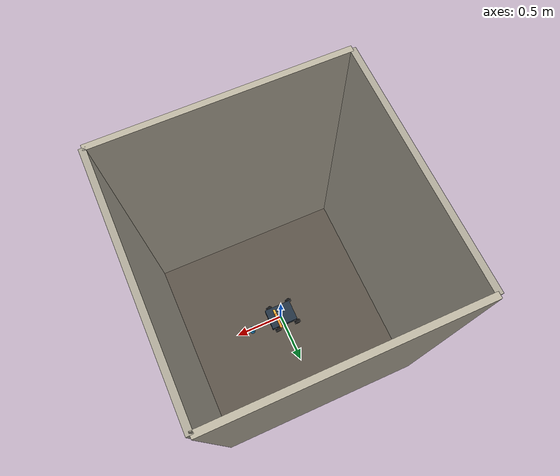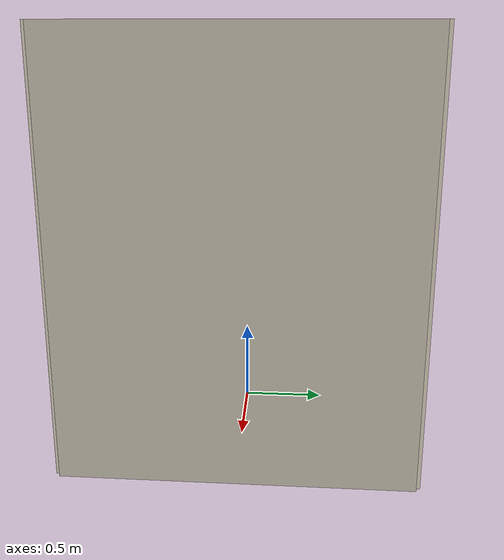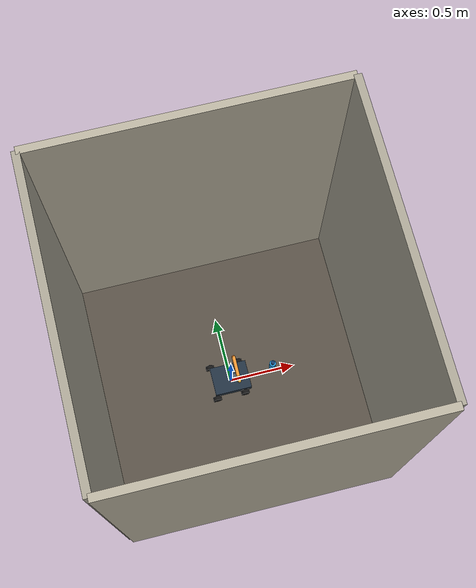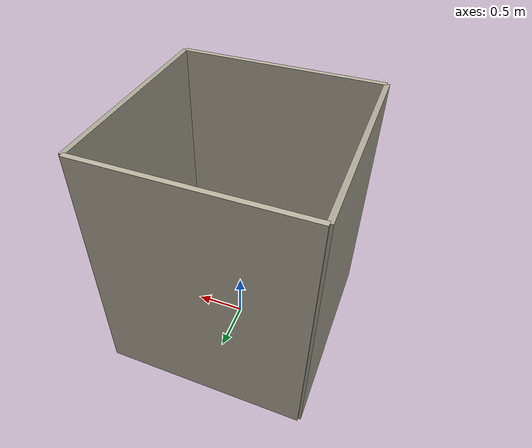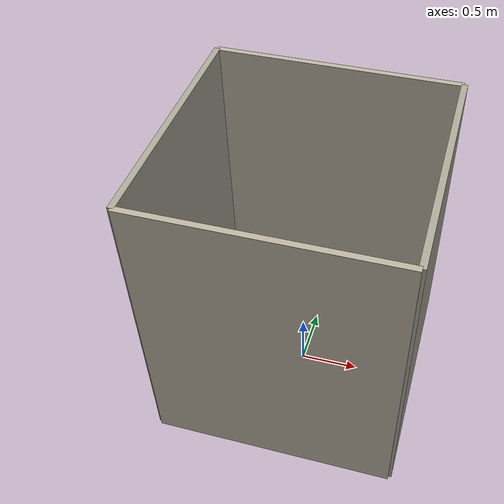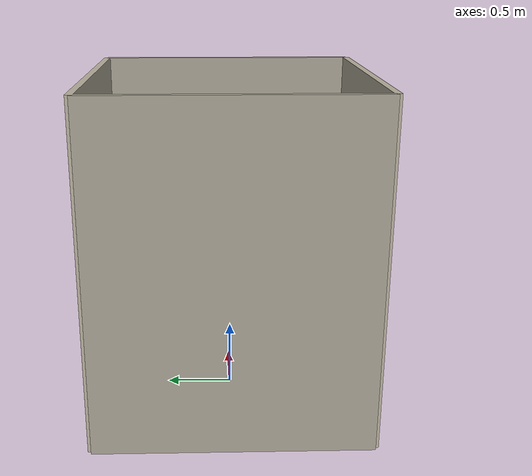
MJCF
<mujoco model="PuppyBot arm experiment">
  <compiler angle="radian" autolimits="true"/>
  <option timestep="0.002" gravity="0 0 -9.81" integrator="implicitfast"/>

  <default>
    <joint damping="0.08" armature="0.01"/>
    <geom friction="0.8 0.02 0.002" solref="0.01 1"/>
    <default class="arm">
      <geom type="capsule" size="0.014" density="780" contype="2" conaffinity="1" rgba="0.87 0.48 0.16 1"/>
    </default>
  </default>

  <visual>
    <headlight ambient="0.35 0.35 0.35" diffuse="0.75 0.75 0.75" specular="0.2 0.2 0.2"/>
    <rgba haze="0.15 0.22 0.29 1"/>
    <global azimuth="135" elevation="-25"/>
    <map znear="0.005"/>
  </visual>

  <worldbody>
    <light pos="0 -1 2" dir="0 0 -1" directional="true"/>
    <geom name="floor" type="plane" size="1 1 0.02" contype="1" conaffinity="2" rgba="0.34 0.31 0.27 1"/>
    <geom name="wall_north" type="box" pos="0 1 1.25" size="1 0.025 1.25" contype="1" conaffinity="2" rgba="0.72 0.69 0.62 1"/>
    <geom name="wall_south" type="box" pos="0 -1 1.25" size="1 0.025 1.25" contype="1" conaffinity="2" rgba="0.72 0.69 0.62 1"/>
    <geom name="wall_east" type="box" pos="1 0 1.25" size="0.025 1 1.25" contype="1" conaffinity="2" rgba="0.66 0.64 0.58 1"/>
    <geom name="wall_west" type="box" pos="-1 0 1.25" size="0.025 1 1.25" contype="1" conaffinity="2" rgba="0.66 0.64 0.58 1"/>

    <!-- The lower body uses the prototype dimensions already reviewed for RobotDreams. -->
    <body name="base" pos="0 0 0.065">
      <joint name="base_x" type="slide" axis="1 0 0" damping="0" armature="0" frictionloss="1000"/>
      <joint name="base_y" type="slide" axis="0 1 0" damping="0" armature="0" frictionloss="1000"/>
      <joint name="base_yaw" type="hinge" axis="0 0 1" damping="0" armature="0" frictionloss="1000"/>
      <geom type="box" size="0.14 0.1076 0.027" contype="0" conaffinity="0" mass="2.4" rgba="0.13 0.19 0.25 1"/>
      <geom type="cylinder" pos="0.085 -0.125 -0.027" euler="1.5707963 0 0" size="0.0325 0.015" contype="0" conaffinity="0" rgba="0.08 0.08 0.08 1"/>
      <geom type="cylinder" pos="0.085 0.125 -0.027" euler="1.5707963 0 0" size="0.0325 0.015" contype="0" conaffinity="0" rgba="0.08 0.08 0.08 1"/>
      <geom type="cylinder" pos="-0.135 -0.125 -0.027" euler="1.5707963 0 0" size="0.0325 0.015" contype="0" conaffinity="0" rgba="0.08 0.08 0.08 1"/>
      <geom type="cylinder" pos="-0.135 0.125 -0.027" euler="1.5707963 0 0" size="0.0325 0.015" contype="0" conaffinity="0" rgba="0.08 0.08 0.08 1"/>

      <body name="arm_base" pos="0.0369572 -0.00974321 0.0589591" euler="0 0 0.1248338">
        <body name="yaw_link" euler="0 0 1.4404079598246167">
          <joint name="yaw" type="hinge" axis="0 0 1" range="-0.7516505860639642 3.74444710322885"/>
          <geom type="cylinder" size="0.025 0.018" density="780" contype="2" conaffinity="1" rgba="0.3 0.35 0.4 1"/>

          <body name="shoulder_link" pos="0.0000007026911535 -0.0191500502291261 0.0200000005609715" euler="0 -0.0211564979567194 0">
            <joint name="shoulder" type="hinge" axis="0 -1 0" range="0.0766990393942821 3.021942152134713"/>
            <geom class="arm" fromto="0 0 0 0.149000901358234 0 0"/>

            <body name="elbow_link" pos="0.149000901358234 0 0" euler="0 -3.106112499034135 0">
              <joint name="elbow" type="hinge" axis="0 1 0" range="0.8068738944278473 5.459437624084996"/>
              <geom class="arm" fromto="0 0 0 0.155000279158917 0 0" rgba="0.94 0.59 0.2 1"/>

              <body name="wrist_link" pos="0.155000279158917 0 0" euler="0 6.298248463610914 0">
                <joint name="wrist" type="hinge" axis="0 -1 0" range="-2.087747852312358 2.063204159706187"/>
                <geom class="arm" fromto="0 0 0 0.0380000913634468 0 0" rgba="0.95 0.72 0.25 1"/>
                <site name="tcp" pos="0.0380000913634468 0 0" size="0.00001" rgba="0.1 0.9 0.9 0"/>
                <!-- Camera -Z looks along tool +X; image right is +Y and image up is -Z. -->
                <camera name="tcp_camera" pos="0.0380000913634468 0 0" xyaxes="0 1 0 0 0 -1" fovy="70"/>
              </body>
            </body>
          </body>
        </body>
      </body>
    </body>

    <body name="bottle" pos="0.34 0.025 0.061">
      <freejoint name="bottle_free"/>
      <geom name="bottle_body" type="cylinder" size="0.025 0.055" mass="0.045" contype="2" conaffinity="1" rgba="0.12 0.56 0.82 1"/>
      <geom name="bottle_neck" type="cylinder" pos="0 0 0.064" size="0.012 0.014" mass="0.004" contype="2" conaffinity="1" rgba="0.73 0.86 0.94 1"/>
      <geom name="bottle_cap" type="cylinder" pos="0 0 0.082" size="0.014 0.005" mass="0.001" contype="2" conaffinity="1" rgba="0.08 0.24 0.42 1"/>
      <site name="bottle_grasp" pos="0 0 0" size="0.00001" rgba="0 0 0 0"/>
    </body>
  </worldbody>

  <actuator>
    <position name="yaw_servo" joint="yaw" kp="24" kv="2.0" ctrlrange="-0.7516505860639642 3.74444710322885" forcerange="-4 4"/>
    <position name="shoulder_servo" joint="shoulder" kp="32" kv="2.5" ctrlrange="0.0766990393942821 3.021942152134713" forcerange="-5 5"/>
    <position name="elbow_servo" joint="elbow" kp="24" kv="2.0" ctrlrange="0.8068738944278473 5.459437624084996" forcerange="-4 4"/>
    <position name="wrist_servo" joint="wrist" kp="12" kv="1.0" ctrlrange="-2.087747852312358 2.063204159706187" forcerange="-2 2"/>
  </actuator>

  <keyframe>
    <key name="ready" qpos="0 0 0 1.5707963267948966 0.6981317007977318 1.5707963267948966 1.6231562043547265 0.34 0.025 0.061 1 0 0 0" ctrl="1.5707963267948966 0.6981317007977318 1.5707963267948966 1.6231562043547265"/>
  </keyframe>
</mujoco>
